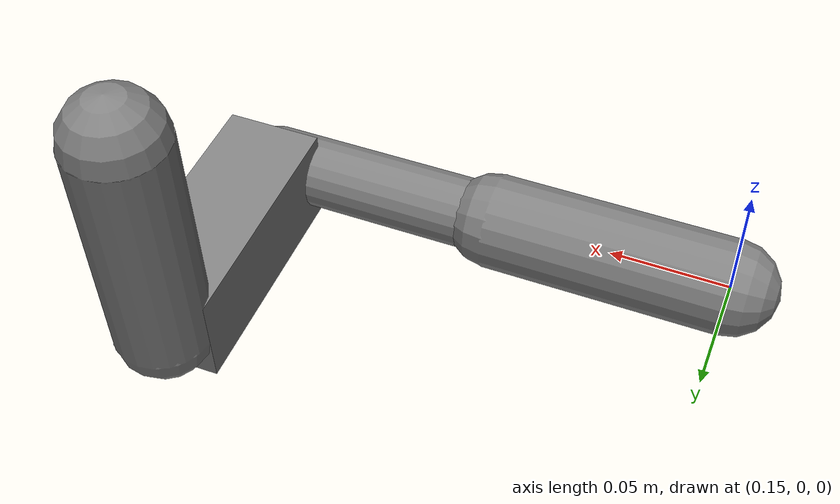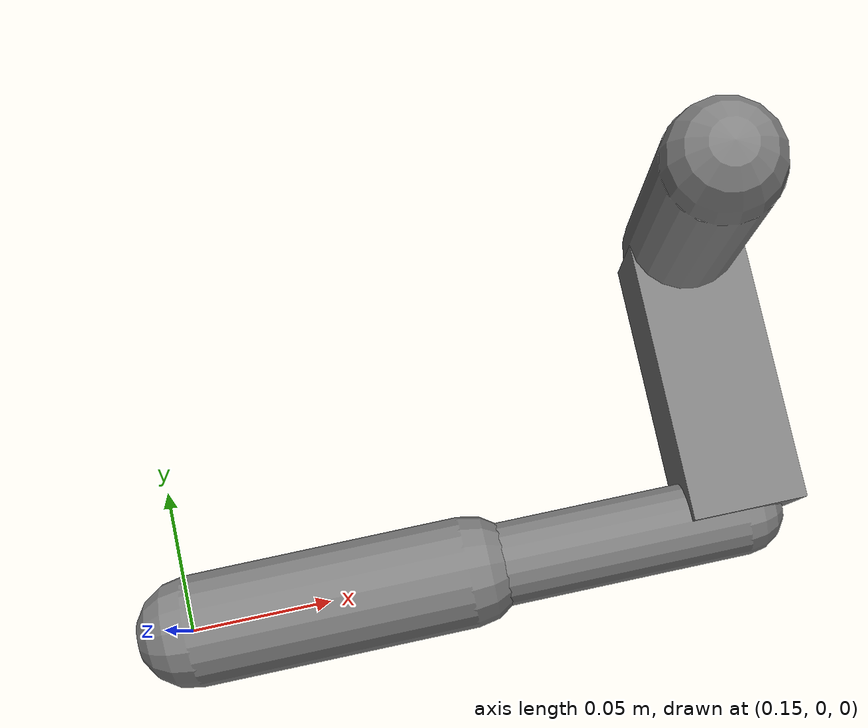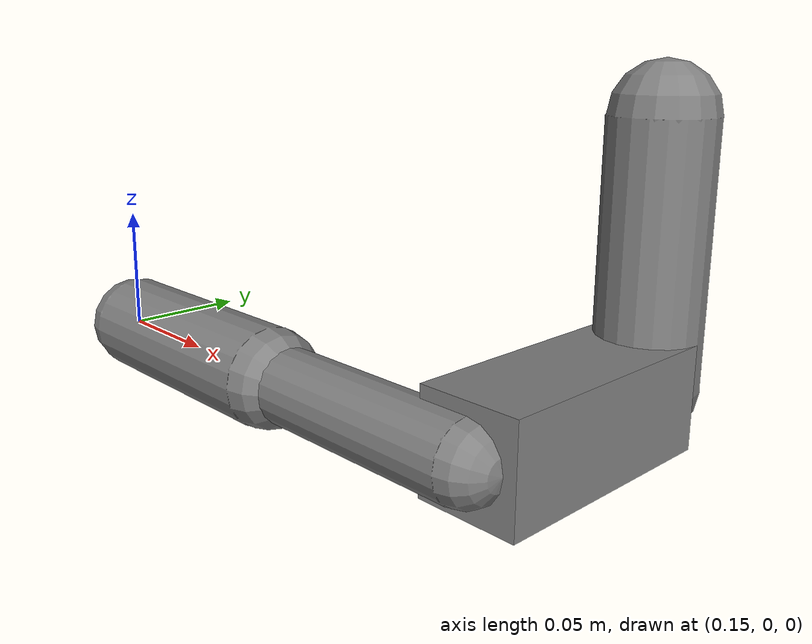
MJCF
<mujoco>

  <default>
    <joint damping=".01" frictionloss=".1"/>
  </default>

  <worldbody>
    <light pos="0 0 1"/>
    <geom type="plane" size="1 1 .01" pos="0 0 -1"/>
    <body pos="0.15 0 0">
      <joint name="hinge" axis="0 1 0"/>
      <geom type="capsule" size="0.02" fromto="0 0 0 .1 0 0"/>
      <body pos="0.1 0 0">
        <joint type="slide" axis="1 0 0" stiffness="200"/>
        <geom type="capsule" size="0.015" fromto="-.1 0 0 .1 0 0"/>
        <body pos=".1 0 0">
          <joint type="ball"/>
          <geom type="box" size=".02" fromto="0 0 0 0 .1 0"/>
          <body pos="0 .1 0">
            <joint axis="1 0 0"/>
            <geom type="capsule" size="0.02" fromto="0 0 0 0 0 .1"/>
          </body>
        </body>
      </body>
    </body>
  </worldbody>

  <actuator>
    <motor joint="hinge"/>
  </actuator>
</mujoco>
